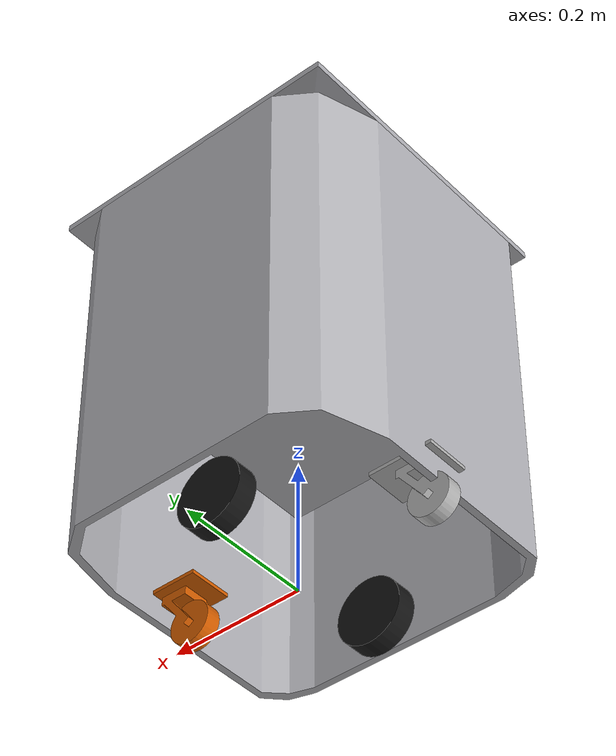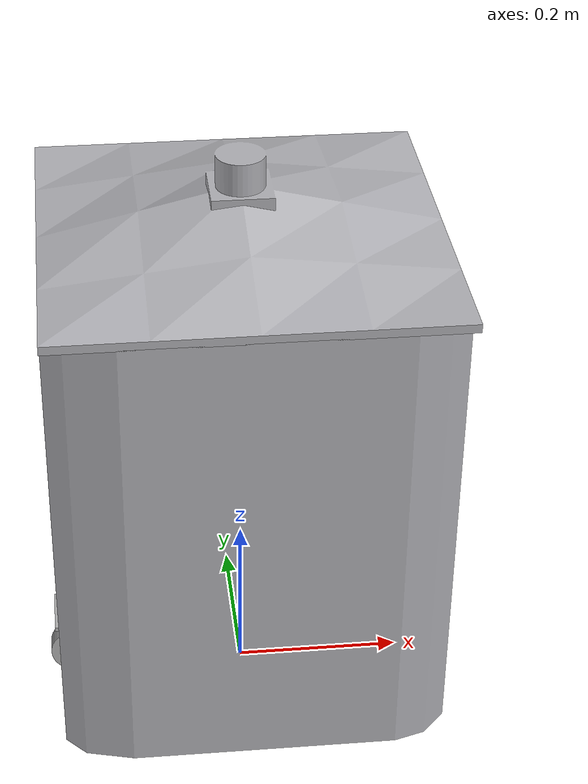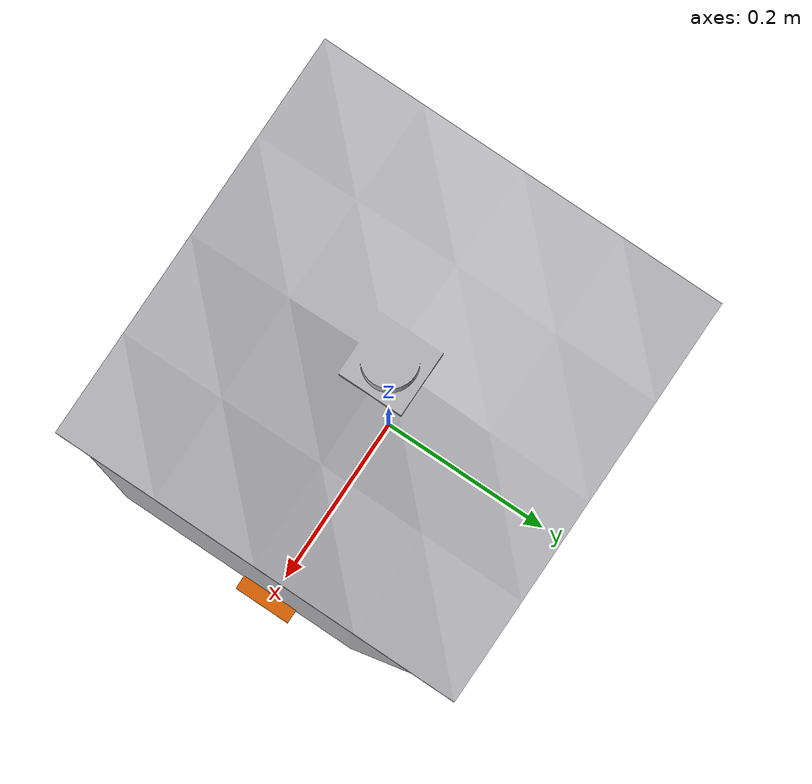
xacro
<?xml version="1.0"?>
<robot xmlns:xacro="http://www.ros.org/wiki/xacro" name="Limbo">

  <!-- Geometry parameters              -->

  <!-- New CAD STL files are exported in the same coordinate system. -->
  <xacro:property name="mesh_scale" value="0.005"/>

  <xacro:property name="wheel_radius" value="0.050"/>
  <xacro:property name="wheel_width" value="0.030"/>
  <xacro:property name="wheel_separation" value="0.3009130859375"/>
  <xacro:property name="wheel_y" value="${wheel_separation / 2.0}"/>

  <!-- base_link is placed at drive-wheel axle height -->
  <xacro:property name="base_link_height" value="0.050"/>

  <xacro:property name="caster_separation" value="0.38"/>
  <xacro:property name="front_caster_x" value="${caster_separation / 2.0}"/>
  <xacro:property name="rear_caster_x" value="${-caster_separation / 2.0}"/>
  <xacro:property name="caster_origin_z_global" value="0.04483131"/>
  <xacro:property name="caster_joint_z" value="${caster_origin_z_global - base_link_height}"/>

  <xacro:property name="caster_wheel_radius" value="0.025"/>
  <xacro:property name="caster_wheel_width" value="0.020"/>

  <!-- Distance between swivel axis and wheel center -->
  <xacro:property name="caster_trail" value="0.025"/>

  <!-- Wheel center Z relative to caster swivel link -->
  <xacro:property name="caster_wheel_z"
                  value="${caster_wheel_radius - caster_origin_z_global}"/>

  <!-- Caster mass: 0.4 kg each -->
  <xacro:property name="caster_swivel_mass" value="0.10"/>
  <xacro:property name="caster_wheel_mass" value="0.30"/>

  <!--
    Nominal masses: total = 21.0 kg
      plate/body 18.6 + roof 0.2 + drive wheels 1.4 + casters 0.8 = 21.0 kg
    roof_mass is provisional; replace it with the measured value later.
  -->
  <xacro:property name="body_mass" value="18.6"/>
  <xacro:property name="roof_mass" value="0.2"/>
  <xacro:property name="wheel_mass" value="0.7"/>

  <!-- Simplified collision / inertia dimensions for plate -->
  <xacro:property name="body_collision_x" value="0.45"/>
  <xacro:property name="body_collision_y" value="0.45"/>
  <xacro:property name="body_collision_z" value="0.563"/>
  <xacro:property name="body_com_z" value="0.279"/>

  <!-- Simplified collision dimensions for the complete roof envelope. -->
  <xacro:property name="roof_collision_x" value="0.45"/>
  <xacro:property name="roof_collision_y" value="0.45"/>
  <xacro:property name="roof_collision_z" value="0.101"/>
  <!-- roof.stl bounds center, expressed relative to base_link/roof_link -->
  <xacro:property name="roof_collision_center_z" value="0.60996"/>

  <xacro:property name="roof_top_z_global" value="0.710301"/>
  <xacro:property name="mid360_measurement_origin_offset" value="0.0143"/>
  <xacro:property name="mid360_z"
                  value="${roof_top_z_global + mid360_measurement_origin_offset - base_link_height}"/>

  <!-- Inertia macros                   -->

  <xacro:macro name="box_inertial" params="mass x y z origin_xyz">
    <inertial>
      <origin xyz="${origin_xyz}" rpy="0 0 0"/>
      <mass value="${mass}"/>
      <inertia
        ixx="${mass * (y*y + z*z) / 12.0}"
        ixy="0.0"
        ixz="0.0"
        iyy="${mass * (x*x + z*z) / 12.0}"
        iyz="0.0"
        izz="${mass * (x*x + y*y) / 12.0}"/>
    </inertial>
  </xacro:macro>

  <!-- Cylinder axis is Y. -->
  <xacro:macro name="wheel_inertial" params="mass radius width">
    <inertial>
      <origin xyz="0 0 0" rpy="0 0 0"/>
      <mass value="${mass}"/>
      <inertia
        ixx="${mass * (3.0*radius*radius + width*width) / 12.0}"
        ixy="0.0"
        ixz="0.0"
        iyy="${0.5 * mass * radius*radius}"
        iyz="0.0"
        izz="${mass * (3.0*radius*radius + width*width) / 12.0}"/>
    </inertial>
  </xacro:macro>

  <xacro:macro name="sphere_inertial" params="mass radius">
    <inertial>
      <origin xyz="0 0 0" rpy="0 0 0"/>
      <mass value="${mass}"/>
      <inertia
        ixx="${0.4 * mass * radius*radius}"
        ixy="0.0"
        ixz="0.0"
        iyy="${0.4 * mass * radius*radius}"
        iyz="0.0"
        izz="${0.4 * mass * radius*radius}"/>
    </inertial>
  </xacro:macro>

  <!-- Materials                        -->

  <material name="limbo_body_color">
    <color rgba="0.70 0.70 0.72 1.0"/>
  </material>

  <material name="limbo_wheel_color">
    <color rgba="0.08 0.08 0.08 1.0"/>
  </material>

  <!-- Base frames / plate              -->

  <link name="base_footprint"/>

  <joint name="base_footprint_joint" type="fixed">
    <parent link="base_footprint"/>
    <child link="base_link"/>
    <origin xyz="0 0 ${base_link_height}" rpy="0 0 0"/>
  </joint>

  <link name="base_link">
    <!--
      Keep the existing 180-degree yaw correction so the CAD model's
      intended front remains ROS +X.
      plate.stl and roof.stl share the same CAD/world coordinate system.
    -->
    <visual name="plate_visual">
      <origin xyz="0 0 ${-base_link_height}" rpy="0 0 ${pi}"/>
      <geometry>
        <mesh filename="package://limbo_description/meshes/plate.stl"
              scale="${mesh_scale} ${mesh_scale} ${mesh_scale}"/>
      </geometry>
      <material name="limbo_body_color"/>
    </visual>

    <collision name="body_collision">
      <origin xyz="0 0 ${body_com_z}" rpy="0 0 0"/>
      <geometry>
        <box size="${body_collision_x} ${body_collision_y} ${body_collision_z}"/>
      </geometry>
    </collision>

    <xacro:box_inertial
      mass="${body_mass}"
      x="${body_collision_x}"
      y="${body_collision_y}"
      z="${body_collision_z}"
      origin_xyz="0 0 ${body_com_z}"/>
  </link>

  <!-- Roof                             -->

  <!--
    roof.stl contains its CAD Z offset already, so roof_link shares the
    same origin as base_link. The visual applies the same floor offset and
    180-degree CAD yaw correction as plate.stl.
  -->
  <link name="roof_link">
    <visual name="roof_visual">
      <origin xyz="0 0 ${-base_link_height}" rpy="0 0 ${pi}"/>
      <geometry>
        <mesh filename="package://limbo_description/meshes/roof.stl"
              scale="${mesh_scale} ${mesh_scale} ${mesh_scale}"/>
      </geometry>
      <material name="limbo_body_color"/>
    </visual>

    <!-- Conservative, low-cost collision approximation for simulation/self-filtering. -->
    <collision name="roof_collision">
      <origin xyz="0 0 ${roof_collision_center_z}" rpy="0 0 0"/>
      <geometry>
        <box size="${roof_collision_x} ${roof_collision_y} ${roof_collision_z}"/>
      </geometry>
    </collision>

    <xacro:box_inertial
      mass="${roof_mass}"
      x="${roof_collision_x}"
      y="${roof_collision_y}"
      z="${roof_collision_z}"
      origin_xyz="0 0 ${roof_collision_center_z}"/>
  </link>

  <joint name="roof_joint" type="fixed">
    <parent link="base_link"/>
    <child link="roof_link"/>
    <origin xyz="0 0 0" rpy="0 0 0"/>
  </joint>

  <!-- Drive wheels                     -->

  <link name="left_wheel_link">
    <visual name="left_wheel_visual">
      <geometry>
        <mesh filename="package://limbo_description/meshes/left_wheel.stl"/>
      </geometry>
      <material name="limbo_wheel_color"/>
    </visual>
    <collision name="left_wheel_collision">
      <origin xyz="0 0 0" rpy="${pi/2.0} 0 0"/>
      <geometry>
        <cylinder radius="${wheel_radius}" length="${wheel_width}"/>
      </geometry>
    </collision>
    <xacro:wheel_inertial
      mass="${wheel_mass}"
      radius="${wheel_radius}"
      width="${wheel_width}"/>
  </link>

  <joint name="left_wheel_joint" type="continuous">
    <parent link="base_link"/>
    <child link="left_wheel_link"/>
    <origin xyz="0 ${wheel_y} 0" rpy="0 0 0"/>
    <axis xyz="0 1 0"/>
    <dynamics damping="0.05" friction="0.0"/>
  </joint>

  <link name="right_wheel_link">
    <visual name="right_wheel_visual">
      <geometry>
        <mesh filename="package://limbo_description/meshes/right_wheel.stl"/>
      </geometry>
      <material name="limbo_wheel_color"/>
    </visual>
    <collision name="right_wheel_collision">
      <origin xyz="0 0 0" rpy="${pi/2.0} 0 0"/>
      <geometry>
        <cylinder radius="${wheel_radius}" length="${wheel_width}"/>
      </geometry>
    </collision>
    <xacro:wheel_inertial
      mass="${wheel_mass}"
      radius="${wheel_radius}"
      width="${wheel_width}"/>
  </link>

  <joint name="right_wheel_joint" type="continuous">
    <parent link="base_link"/>
    <child link="right_wheel_link"/>
    <origin xyz="0 ${-wheel_y} 0" rpy="0 0 0"/>
    <axis xyz="0 1 0"/>
    <dynamics damping="0.05" friction="0.0"/>
  </joint>

  <!-- Front caster                     -->

  <link name="front_caster_swivel_link">
    <visual name="front_caster_visual">
      <geometry>
        <mesh filename="package://limbo_description/meshes/front_caster.stl"/>
      </geometry>
    </visual>

    <xacro:box_inertial
      mass="${caster_swivel_mass}"
      x="0.03"
      y="0.03"
      z="0.03"
      origin_xyz="0 0 0"/>
  </link>

  <joint name="front_caster_swivel_joint" type="continuous">
    <parent link="base_link"/>
    <child link="front_caster_swivel_link"/>
    <origin xyz="${front_caster_x} 0 ${caster_joint_z}" rpy="0 0 0"/>
    <axis xyz="0 0 1"/>
    <dynamics damping="0.10" friction="0.01"/>
  </joint>

  <link name="front_caster_wheel_link">
    <collision name="front_caster_wheel_collision">
      <origin xyz="0 0 0" rpy="${pi/2.0} 0 0"/>
      <geometry>
        <cylinder radius="${caster_wheel_radius}" length="${caster_wheel_width}"/>
      </geometry>
    </collision>

    <xacro:wheel_inertial
      mass="${caster_wheel_mass}"
      radius="${caster_wheel_radius}"
      width="${caster_wheel_width}"/>
  </link>

  <joint name="front_caster_wheel_joint" type="continuous">
    <parent link="front_caster_swivel_link"/>
    <child link="front_caster_wheel_link"/>
    <origin xyz="${-caster_trail} 0 ${caster_wheel_z}" rpy="0 0 0"/>
    <axis xyz="0 1 0"/>
    <dynamics damping="0.02" friction="0.0"/>
  </joint>

  <!-- Rear caster                      -->

  <link name="rear_caster_swivel_link">
    <visual name="rear_caster_visual">
      <geometry>
        <mesh filename="package://limbo_description/meshes/rear_caster.stl"/>
      </geometry>
    </visual>

    <xacro:box_inertial
      mass="${caster_swivel_mass}"
      x="0.03"
      y="0.03"
      z="0.03"
      origin_xyz="0 0 0"/>
  </link>

  <joint name="rear_caster_swivel_joint" type="continuous">
    <parent link="base_link"/>
    <child link="rear_caster_swivel_link"/>
    <origin xyz="${rear_caster_x} 0 ${caster_joint_z}" rpy="0 0 0"/>
    <axis xyz="0 0 1"/>
    <dynamics damping="0.10" friction="0.01"/>
  </joint>

  <link name="rear_caster_wheel_link">
    <collision name="rear_caster_wheel_collision">
      <origin xyz="0 0 0" rpy="${pi/2.0} 0 0"/>
      <geometry>
        <cylinder radius="${caster_wheel_radius}" length="${caster_wheel_width}"/>
      </geometry>
    </collision>

    <xacro:wheel_inertial
      mass="${caster_wheel_mass}"
      radius="${caster_wheel_radius}"
      width="${caster_wheel_width}"/>
  </link>

  <joint name="rear_caster_wheel_joint" type="continuous">
    <parent link="rear_caster_swivel_link"/>
    <child link="rear_caster_wheel_link"/>
    <origin xyz="${-caster_trail} 0 ${caster_wheel_z}" rpy="0 0 0"/>
    <axis xyz="0 1 0"/>
    <dynamics damping="0.02" friction="0.0"/>
  </joint>

  <!-- Livox MID-360                    -->

  <!--
    The MID-360 frame is no longer embedded in body.stl.
    It is centered on the roof: X=0, Y=0.
    Z is the sensor measurement origin above the roof mounting surface.
  -->
  <link name="mid360_link"/>

  <joint name="mid360_joint" type="fixed">
    <parent link="roof_link"/>
    <child link="mid360_link"/>
    <origin xyz="0 0 ${mid360_z}" rpy="0 0 0"/>
  </joint>

  <!-- RGB-D Camera                     -->

  <link name="rgbd_camera_link"/>

  <joint name="rgbd_camera_joint" type="fixed">
    <parent link="base_link"/>
    <child link="rgbd_camera_link"/>

    <!--
      base_link는 바닥에서 0.05 m, camera는 base_link 위 0.45 m (바닥에서 0.50 m), 전방 0.22 m, 수평.
      높이·기울기는 아직 정하지 않았다 (docs/KNOWN_ISSUES.md "센서 배치")
    -->
    <origin
      xyz="0.22 0 0.45"
      rpy="0 0 0"/>
  </joint>

  <!-- ROS optical frame convention
       X = right
       Y = down
       Z = forward
  -->
  <link name="rgbd_camera_optical_link"/>

  <joint name="rgbd_camera_optical_joint" type="fixed">
    <parent link="rgbd_camera_link"/>
    <child link="rgbd_camera_optical_link"/>
    <origin
      xyz="0 0 0"
      rpy="-1.570796 0 -1.570796"/>
  </joint>

  <xacro:include
    filename="$(find limbo_description)/urdf/legacy/limbo_legacy.gazebo.xacro"/>

</robot>
